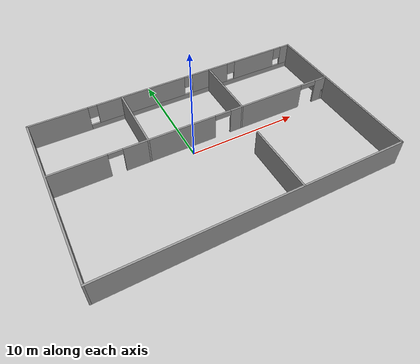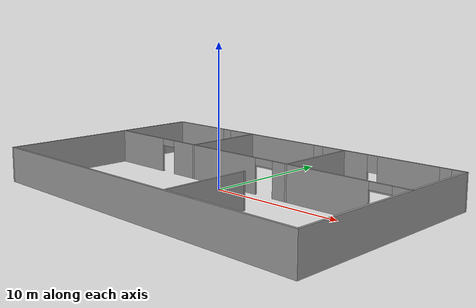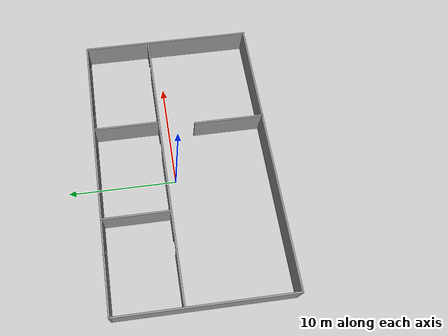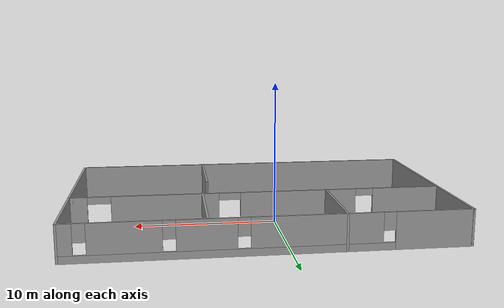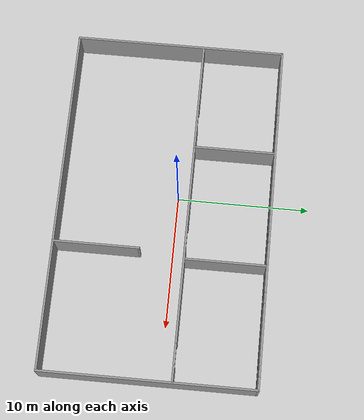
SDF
<?xml version='1.0'?>
<sdf version='1.6'>
  <model name='office'>
    <pose frame=''>1.24707 -0.869994 0 0 -0 0</pose>
    <link name='Wall_0'>
      <pose frame=''>-7.4e-05 7.92399 0 0 -0 0</pose>
      <visual name='Wall_0_Visual_0'>
        <pose frame=''>-10.5134 0 1.25 0 -0 0</pose>
        <geometry>
          <box>
            <size>5.22353 0.15 2.5</size>
          </box>
        </geometry>
        <material>
          <script>
            <uri>file://media/materials/scripts/gazebo.material</uri>
            <name>Gazebo/Grey</name>
          </script>
          <ambient>1 1 1 1</ambient>
        </material>
        <meta>
          <layer>0</layer>
        </meta>
      </visual>
      <collision name='Wall_0_Collision_0'>
        <geometry>
          <box>
            <size>5.22353 0.15 2.5</size>
          </box>
        </geometry>
        <pose frame=''>-10.5134 0 1.25 0 -0 0</pose>
      </collision>
      <visual name='Wall_0_Visual_1'>
        <pose frame=''>2.61177 0 0.25 0 -0 0</pose>
        <geometry>
          <box>
            <size>21.0268 0.15 0.5</size>
          </box>
        </geometry>
        <material>
          <script>
            <uri>file://media/materials/scripts/gazebo.material</uri>
            <name>Gazebo/Grey</name>
          </script>
          <ambient>1 1 1 1</ambient>
        </material>
        <meta>
          <layer>0</layer>
        </meta>
      </visual>
      <collision name='Wall_0_Collision_1'>
        <geometry>
          <box>
            <size>21.0268 0.15 0.5</size>
          </box>
        </geometry>
        <pose frame=''>2.61177 0 0.25 0 -0 0</pose>
      </collision>
      <visual name='Wall_0_Visual_2'>
        <pose frame=''>-2.88161 0 1.5 0 -0 0</pose>
        <geometry>
          <box>
            <size>8.44 0.15 2</size>
          </box>
        </geometry>
        <material>
          <script>
            <uri>file://media/materials/scripts/gazebo.material</uri>
            <name>Gazebo/Grey</name>
          </script>
          <ambient>1 1 1 1</ambient>
        </material>
        <meta>
          <layer>0</layer>
        </meta>
      </visual>
      <collision name='Wall_0_Collision_2'>
        <geometry>
          <box>
            <size>8.44 0.15 2</size>
          </box>
        </geometry>
        <pose frame=''>-2.88161 0 1.5 0 -0 0</pose>
      </collision>
      <visual name='Wall_0_Visual_3'>
        <pose frame=''>4.03839 0 1.5 0 -0 0</pose>
        <geometry>
          <box>
            <size>3.8 0.15 2</size>
          </box>
        </geometry>
        <material>
          <script>
            <uri>file://media/materials/scripts/gazebo.material</uri>
            <name>Gazebo/Grey</name>
          </script>
          <ambient>1 1 1 1</ambient>
        </material>
        <meta>
          <layer>0</layer>
        </meta>
      </visual>
      <collision name='Wall_0_Collision_3'>
        <geometry>
          <box>
            <size>3.8 0.15 2</size>
          </box>
        </geometry>
        <pose frame=''>4.03839 0 1.5 0 -0 0</pose>
      </collision>
      <visual name='Wall_0_Visual_4'>
        <pose frame=''>9.01839 0 1.5 0 -0 0</pose>
        <geometry>
          <box>
            <size>4.56 0.15 2</size>
          </box>
        </geometry>
        <material>
          <script>
            <uri>file://media/materials/scripts/gazebo.material</uri>
            <name>Gazebo/Grey</name>
          </script>
          <ambient>1 1 1 1</ambient>
        </material>
        <meta>
          <layer>0</layer>
        </meta>
      </visual>
      <collision name='Wall_0_Collision_4'>
        <geometry>
          <box>
            <size>4.56 0.15 2</size>
          </box>
        </geometry>
        <pose frame=''>9.01839 0 1.5 0 -0 0</pose>
      </collision>
      <visual name='Wall_0_Visual_5'>
        <pose frame=''>12.6118 0 1.5 0 -0 0</pose>
        <geometry>
          <box>
            <size>1.02676 0.15 2</size>
          </box>
        </geometry>
        <material>
          <script>
            <uri>file://media/materials/scripts/gazebo.material</uri>
            <name>Gazebo/Grey</name>
          </script>
          <ambient>1 1 1 1</ambient>
        </material>
        <meta>
          <layer>0</layer>
        </meta>
      </visual>
      <collision name='Wall_0_Collision_5'>
        <geometry>
          <box>
            <size>1.02676 0.15 2</size>
          </box>
        </geometry>
        <pose frame=''>12.6118 0 1.5 0 -0 0</pose>
      </collision>
      <visual name='Wall_0_Visual_6'>
        <pose frame=''>-7.50161 0 1.9 0 -0 0</pose>
        <geometry>
          <box>
            <size>0.8 0.15 1.2</size>
          </box>
        </geometry>
        <material>
          <script>
            <uri>file://media/materials/scripts/gazebo.material</uri>
            <name>Gazebo/Grey</name>
          </script>
          <ambient>1 1 1 1</ambient>
        </material>
        <meta>
          <layer>0</layer>
        </meta>
      </visual>
      <collision name='Wall_0_Collision_6'>
        <geometry>
          <box>
            <size>0.8 0.15 1.2</size>
          </box>
        </geometry>
        <pose frame=''>-7.50161 0 1.9 0 -0 0</pose>
      </collision>
      <visual name='Wall_0_Visual_7'>
        <pose frame=''>1.73839 0 1.9 0 -0 0</pose>
        <geometry>
          <box>
            <size>0.8 0.15 1.2</size>
          </box>
        </geometry>
        <material>
          <script>
            <uri>file://media/materials/scripts/gazebo.material</uri>
            <name>Gazebo/Grey</name>
          </script>
          <ambient>1 1 1 1</ambient>
        </material>
        <meta>
          <layer>0</layer>
        </meta>
      </visual>
      <collision name='Wall_0_Collision_7'>
        <geometry>
          <box>
            <size>0.8 0.15 1.2</size>
          </box>
        </geometry>
        <pose frame=''>1.73839 0 1.9 0 -0 0</pose>
      </collision>
      <visual name='Wall_0_Visual_8'>
        <pose frame=''>6.33839 0 1.9 0 -0 0</pose>
        <geometry>
          <box>
            <size>0.8 0.15 1.2</size>
          </box>
        </geometry>
        <material>
          <script>
            <uri>file://media/materials/scripts/gazebo.material</uri>
            <name>Gazebo/Grey</name>
          </script>
          <ambient>1 1 1 1</ambient>
        </material>
        <meta>
          <layer>0</layer>
        </meta>
      </visual>
      <collision name='Wall_0_Collision_8'>
        <geometry>
          <box>
            <size>0.8 0.15 1.2</size>
          </box>
        </geometry>
        <pose frame=''>6.33839 0 1.9 0 -0 0</pose>
      </collision>
      <visual name='Wall_0_Visual_9'>
        <pose frame=''>11.6984 0 1.9 0 -0 0</pose>
        <geometry>
          <box>
            <size>0.8 0.15 1.2</size>
          </box>
        </geometry>
        <material>
          <script>
            <uri>file://media/materials/scripts/gazebo.material</uri>
            <name>Gazebo/Grey</name>
          </script>
          <ambient>1 1 1 1</ambient>
        </material>
        <meta>
          <layer>0</layer>
        </meta>
      </visual>
      <collision name='Wall_0_Collision_9'>
        <geometry>
          <box>
            <size>0.8 0.15 1.2</size>
          </box>
        </geometry>
        <pose frame=''>11.6984 0 1.9 0 -0 0</pose>
      </collision>
    </link>
    <link name='Wall_1'>
      <collision name='Wall_1_Collision'>
        <geometry>
          <box>
            <size>16 0.15 2.5</size>
          </box>
        </geometry>
        <pose frame=''>0 0 1.25 0 -0 0</pose>
      </collision>
      <visual name='Wall_1_Visual'>
        <pose frame=''>0 0 1.25 0 -0 0</pose>
        <geometry>
          <box>
            <size>16 0.15 2.5</size>
          </box>
        </geometry>
        <material>
          <script>
            <uri>file://media/materials/scripts/gazebo.material</uri>
            <name>Gazebo/Grey</name>
          </script>
          <ambient>1 1 1 1</ambient>
        </material>
        <meta>
          <layer>0</layer>
        </meta>
      </visual>
      <pose frame=''>13.0501 -0.000993 0 0 0 -1.57078</pose>
    </link>
    <link name='Wall_12'>
      <collision name='Wall_12_Collision'>
        <geometry>
          <box>
            <size>6.194 0.15 2.5</size>
          </box>
        </geometry>
        <pose frame=''>0 0 1.25 0 -0 0</pose>
      </collision>
      <visual name='Wall_12_Visual'>
        <pose frame=''>0 0 1.25 0 -0 0</pose>
        <geometry>
          <box>
            <size>6.194 0.15 2.5</size>
          </box>
        </geometry>
        <material>
          <script>
            <uri>file://media/materials/scripts/gazebo.material</uri>
            <name>Gazebo/Grey</name>
          </script>
          <ambient>1 1 1 1</ambient>
        </material>
        <meta>
          <layer>0</layer>
        </meta>
      </visual>
      <pose frame=''>3.97793 4.82399 0 0 0 -1.5708</pose>
    </link>
    <link name='Wall_14'>
      <collision name='Wall_14_Collision'>
        <geometry>
          <box>
            <size>6.5 0.15 2.5</size>
          </box>
        </geometry>
        <pose frame=''>0 0 1.25 0 -0 0</pose>
      </collision>
      <visual name='Wall_14_Visual'>
        <pose frame=''>0 0 1.25 0 -0 0</pose>
        <geometry>
          <box>
            <size>6.5 0.15 2.5</size>
          </box>
        </geometry>
        <material>
          <script>
            <uri>file://media/materials/scripts/gazebo.material</uri>
            <name>Gazebo/Grey</name>
          </script>
          <ambient>1 1 1 1</ambient>
        </material>
        <meta>
          <layer>0</layer>
        </meta>
      </visual>
      <pose frame=''>3.45831 -4.73938 0 0 -0 1.5708</pose>
    </link>
    <link name='Wall_15'>
      <collision name='Wall_15_Collision'>
        <geometry>
          <box>
            <size>0.15 0.15 2.5</size>
          </box>
        </geometry>
        <pose frame=''>0 0 1.25 0 -0 0</pose>
      </collision>
      <visual name='Wall_15_Visual'>
        <pose frame=''>0 0 1.25 0 -0 0</pose>
        <geometry>
          <box>
            <size>0.15 0.15 2.5</size>
          </box>
        </geometry>
        <material>
          <script>
            <uri>file://media/materials/scripts/gazebo.material</uri>
            <name>Gazebo/Grey</name>
          </script>
          <ambient>1 1 1 1</ambient>
        </material>
        <meta>
          <layer>0</layer>
        </meta>
      </visual>
      <pose frame=''>3.45831 -1.56438 0 0 -0 0</pose>
    </link>
    <link name='Wall_2'>
      <collision name='Wall_2_Collision'>
        <geometry>
          <box>
            <size>26.25 0.15 2.5</size>
          </box>
        </geometry>
        <pose frame=''>0 0 1.25 0 -0 0</pose>
      </collision>
      <visual name='Wall_2_Visual'>
        <pose frame=''>0 0 1.25 0 -0 0</pose>
        <geometry>
          <box>
            <size>26.25 0.15 2.5</size>
          </box>
        </geometry>
        <material>
          <script>
            <uri>file://media/materials/scripts/gazebo.material</uri>
            <name>Gazebo/Grey</name>
          </script>
          <ambient>1 1 1 1</ambient>
        </material>
        <meta>
          <layer>0</layer>
        </meta>
      </visual>
      <pose frame=''>0.000219 -7.92598 0 0 -0 3.14159</pose>
    </link>
    <link name='Wall_3'>
      <collision name='Wall_3_Collision'>
        <geometry>
          <box>
            <size>16 0.15 2.5</size>
          </box>
        </geometry>
        <pose frame=''>0 0 1.25 0 -0 0</pose>
      </collision>
      <visual name='Wall_3_Visual'>
        <pose frame=''>0 0 1.25 0 -0 0</pose>
        <geometry>
          <box>
            <size>16 0.15 2.5</size>
          </box>
        </geometry>
        <material>
          <script>
            <uri>file://media/materials/scripts/gazebo.material</uri>
            <name>Gazebo/Grey</name>
          </script>
          <ambient>1 1 1 1</ambient>
        </material>
        <meta>
          <layer>0</layer>
        </meta>
      </visual>
      <pose frame=''>-13.0498 -0.00098 0 0 -0 1.5708</pose>
    </link>
    <link name='Wall_4'>
      <collision name='Wall_4_Collision'>
        <geometry>
          <box>
            <size>0.16 0.15 2.5</size>
          </box>
        </geometry>
        <pose frame=''>0 0 1.25 0 -0 0</pose>
      </collision>
      <visual name='Wall_4_Visual'>
        <pose frame=''>0 0 1.25 0 -0 0</pose>
        <geometry>
          <box>
            <size>0.16 0.15 2.5</size>
          </box>
        </geometry>
        <material>
          <script>
            <uri>file://media/materials/scripts/gazebo.material</uri>
            <name>Gazebo/Grey</name>
          </script>
          <ambient>1 1 1 1</ambient>
        </material>
        <meta>
          <layer>0</layer>
        </meta>
      </visual>
      <pose frame=''>-13.0448 7.92402 0 0 -0 0</pose>
    </link>
    <link name='Wall_6'>
      <pose frame=''>0.026959 1.80228 0 0 -0 0</pose>
      <visual name='Wall_6_Visual_0'>
        <pose frame=''>-10.611 0 1.25 0 -0 0</pose>
        <geometry>
          <box>
            <size>4.77804 0.15 2.5</size>
          </box>
        </geometry>
        <material>
          <script>
            <uri>file://media/materials/scripts/gazebo.material</uri>
            <name>Gazebo/Grey</name>
          </script>
          <ambient>1 1 1 1</ambient>
        </material>
        <meta>
          <layer>0</layer>
        </meta>
      </visual>
      <collision name='Wall_6_Collision_0'>
        <geometry>
          <box>
            <size>4.77804 0.15 2.5</size>
          </box>
        </geometry>
        <pose frame=''>-10.611 0 1.25 0 -0 0</pose>
      </collision>
      <visual name='Wall_6_Visual_1'>
        <pose frame=''>-2.82775 0 1.25 0 -0 0</pose>
        <geometry>
          <box>
            <size>8.26843 0.15 2.5</size>
          </box>
        </geometry>
        <material>
          <script>
            <uri>file://media/materials/scripts/gazebo.material</uri>
            <name>Gazebo/Grey</name>
          </script>
          <ambient>1 1 1 1</ambient>
        </material>
        <meta>
          <layer>0</layer>
        </meta>
      </visual>
      <collision name='Wall_6_Collision_1'>
        <geometry>
          <box>
            <size>8.26843 0.15 2.5</size>
          </box>
        </geometry>
        <pose frame=''>-2.82775 0 1.25 0 -0 0</pose>
      </collision>
      <visual name='Wall_6_Visual_2'>
        <pose frame=''>6.51145 0 1.25 0 -0 0</pose>
        <geometry>
          <box>
            <size>7.40996 0.15 2.5</size>
          </box>
        </geometry>
        <material>
          <script>
            <uri>file://media/materials/scripts/gazebo.material</uri>
            <name>Gazebo/Grey</name>
          </script>
          <ambient>1 1 1 1</ambient>
        </material>
        <meta>
          <layer>0</layer>
        </meta>
      </visual>
      <collision name='Wall_6_Collision_2'>
        <geometry>
          <box>
            <size>7.40996 0.15 2.5</size>
          </box>
        </geometry>
        <pose frame=''>6.51145 0 1.25 0 -0 0</pose>
      </collision>
      <visual name='Wall_6_Visual_3'>
        <pose frame=''>12.3982 0 1.25 0 -0 0</pose>
        <geometry>
          <box>
            <size>1.20357 0.15 2.5</size>
          </box>
        </geometry>
        <material>
          <script>
            <uri>file://media/materials/scripts/gazebo.material</uri>
            <name>Gazebo/Grey</name>
          </script>
          <ambient>1 1 1 1</ambient>
        </material>
        <meta>
          <layer>0</layer>
        </meta>
      </visual>
      <collision name='Wall_6_Collision_3'>
        <geometry>
          <box>
            <size>1.20357 0.15 2.5</size>
          </box>
        </geometry>
        <pose frame=''>12.3982 0 1.25 0 -0 0</pose>
      </collision>
      <visual name='Wall_6_Visual_4'>
        <pose frame=''>-7.59196 0 2.25 0 -0 0</pose>
        <geometry>
          <box>
            <size>1.26 0.15 0.5</size>
          </box>
        </geometry>
        <material>
          <script>
            <uri>file://media/materials/scripts/gazebo.material</uri>
            <name>Gazebo/Grey</name>
          </script>
          <ambient>1 1 1 1</ambient>
        </material>
        <meta>
          <layer>0</layer>
        </meta>
      </visual>
      <collision name='Wall_6_Collision_4'>
        <geometry>
          <box>
            <size>1.26 0.15 0.5</size>
          </box>
        </geometry>
        <pose frame=''>-7.59196 0 2.25 0 -0 0</pose>
      </collision>
      <visual name='Wall_6_Visual_5'>
        <pose frame=''>2.05647 0 2.25 0 -0 0</pose>
        <geometry>
          <box>
            <size>1.5 0.15 0.5</size>
          </box>
        </geometry>
        <material>
          <script>
            <uri>file://media/materials/scripts/gazebo.material</uri>
            <name>Gazebo/Grey</name>
          </script>
          <ambient>1 1 1 1</ambient>
        </material>
        <meta>
          <layer>0</layer>
        </meta>
      </visual>
      <collision name='Wall_6_Collision_5'>
        <geometry>
          <box>
            <size>1.5 0.15 0.5</size>
          </box>
        </geometry>
        <pose frame=''>2.05647 0 2.25 0 -0 0</pose>
      </collision>
      <visual name='Wall_6_Visual_6'>
        <pose frame=''>11.0064 0 2.25 0 -0 0</pose>
        <geometry>
          <box>
            <size>1.58 0.15 0.5</size>
          </box>
        </geometry>
        <material>
          <script>
            <uri>file://media/materials/scripts/gazebo.material</uri>
            <name>Gazebo/Grey</name>
          </script>
          <ambient>1 1 1 1</ambient>
        </material>
        <meta>
          <layer>0</layer>
        </meta>
      </visual>
      <collision name='Wall_6_Collision_6'>
        <geometry>
          <box>
            <size>1.58 0.15 0.5</size>
          </box>
        </geometry>
        <pose frame=''>11.0064 0 2.25 0 -0 0</pose>
      </collision>
    </link>
    <link name='Wall_7'>
      <collision name='Wall_7_Collision'>
        <geometry>
          <box>
            <size>0.31 0.15 2.5</size>
          </box>
        </geometry>
        <pose frame=''>0 0 1.25 0 -0 0</pose>
      </collision>
      <visual name='Wall_7_Visual'>
        <pose frame=''>0 0 1.25 0 -0 0</pose>
        <geometry>
          <box>
            <size>0.31 0.15 2.5</size>
          </box>
        </geometry>
        <material>
          <script>
            <uri>file://media/materials/scripts/gazebo.material</uri>
            <name>Gazebo/Grey</name>
          </script>
          <ambient>1 1 1 1</ambient>
        </material>
        <meta>
          <layer>0</layer>
        </meta>
      </visual>
      <pose frame=''>12.912 1.80228 0 0 0 -3.14159</pose>
    </link>
    <link name='Wall_9'>
      <collision name='Wall_9_Collision'>
        <geometry>
          <box>
            <size>6.274 0.15 2.5</size>
          </box>
        </geometry>
        <pose frame=''>0 0 1.25 0 -0 0</pose>
      </collision>
      <visual name='Wall_9_Visual'>
        <pose frame=''>0 0 1.25 0 -0 0</pose>
        <geometry>
          <box>
            <size>6.274 0.15 2.5</size>
          </box>
        </geometry>
        <material>
          <script>
            <uri>file://media/materials/scripts/gazebo.material</uri>
            <name>Gazebo/Grey</name>
          </script>
          <ambient>1 1 1 1</ambient>
        </material>
        <meta>
          <layer>0</layer>
        </meta>
      </visual>
      <pose frame=''>-4.78207 4.86399 0 0 0 -1.5708</pose>
    </link>
    <static>1</static>
  </model>
</sdf>
